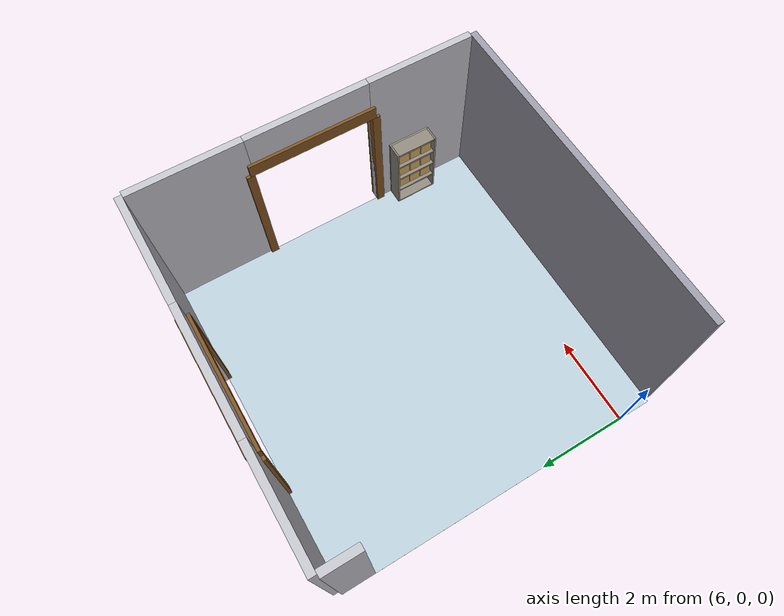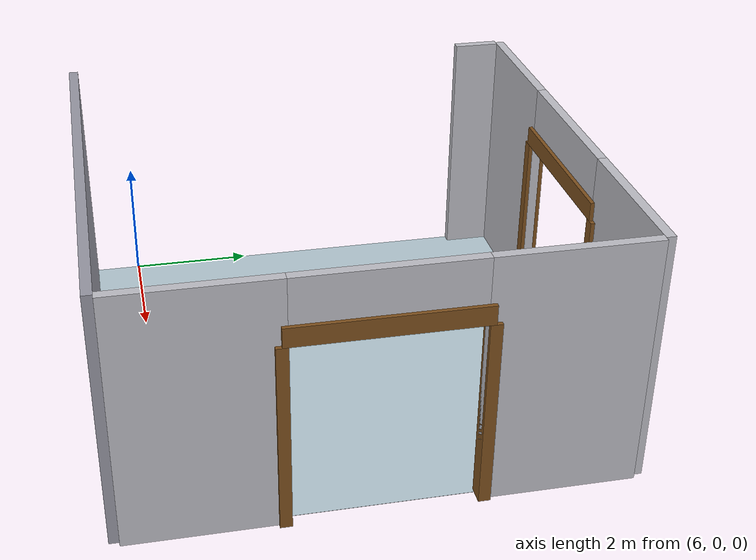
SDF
<?xml version="1.0"?>
<sdf version="1.8">
  <model name="room_c">
    <static>true</static>
    <pose>0 0 0 0 0 0</pose>
    <link name="floor_c">
      <pose>9.75 3.0 0.002 0 0 0</pose>
      <visual name="vis">
        <geometry><box><size>7.5 7.5 0.004</size></box></geometry>
        <material><ambient>0.71 0.79 0.83 1</ambient><diffuse>0.71 0.79 0.83 1</diffuse></material>
      </visual>
    </link>
    <link name="wall_c_s">
      <pose>9.825 -0.825 2.0 0 0 0</pose>
      <collision name="col"><geometry><box><size>7.499999999999999 0.15 4.0</size></box></geometry></collision>
      <visual name="vis">
        <geometry><box><size>7.499999999999999 0.15 4.0</size></box></geometry>
        <material><ambient>0.6 0.6 0.65 1</ambient><diffuse>0.6 0.6 0.65 1</diffuse></material>
      </visual>
    </link>
    <link name="wall_c_e_bot">
      <pose>13.575 0.44999999999999996 2.0 0 0 0</pose>
      <collision name="col"><geometry><box><size>0.15 2.4 4.0</size></box></geometry></collision>
      <visual name="vis">
        <geometry><box><size>0.15 2.4 4.0</size></box></geometry>
        <material><ambient>0.75 0.75 0.78 1</ambient><diffuse>0.75 0.75 0.78 1</diffuse></material>
      </visual>
    </link>
    <link name="wall_c_e_top">
      <pose>13.575 5.55 2.0 0 0 0</pose>
      <collision name="col"><geometry><box><size>0.15 2.4000000000000004 4.0</size></box></geometry></collision>
      <visual name="vis">
        <geometry><box><size>0.15 2.4000000000000004 4.0</size></box></geometry>
        <material><ambient>0.75 0.75 0.78 1</ambient><diffuse>0.75 0.75 0.78 1</diffuse></material>
      </visual>
    </link>
    <link name="wall_c_e_door_top">
      <pose>13.575 3.0 3.5 0 0 0</pose>
      <collision name="col"><geometry><box><size>0.15 2.7 1.0</size></box></geometry></collision>
      <visual name="vis">
        <geometry><box><size>0.15 2.7 1.0</size></box></geometry>
        <material><ambient>0.75 0.75 0.78 1</ambient><diffuse>0.75 0.75 0.78 1</diffuse></material>
      </visual>
    </link>
    <link name="frm_cf_l">
      <pose>13.575 1.5599999999999998 1.5 0 0 0</pose>
      <visual name="vis">
        <geometry><box><size>0.28 0.18 3.0</size></box></geometry>
        <material><ambient>0.5 0.32 0.12 1</ambient><diffuse>0.5 0.32 0.12 1</diffuse></material>
      </visual>
    </link>
    <link name="frm_cf_r">
      <pose>13.575 4.44 1.5 0 0 0</pose>
      <visual name="vis">
        <geometry><box><size>0.28 0.18 3.0</size></box></geometry>
        <material><ambient>0.5 0.32 0.12 1</ambient><diffuse>0.5 0.32 0.12 1</diffuse></material>
      </visual>
    </link>
    <link name="frm_cf_t">
      <pose>13.575 3.0 3.15 0 0 0</pose>
      <visual name="vis">
        <geometry><box><size>0.28 2.8800000000000003 0.3</size></box></geometry>
        <material><ambient>0.5 0.32 0.12 1</ambient><diffuse>0.5 0.32 0.12 1</diffuse></material>
      </visual>
    </link>
    <link name="wall_c_w_gap">
      <pose>6.075 6.375 2.0 0 0 0</pose>
      <collision name="col"><geometry><box><size>0.15 0.75 4.0</size></box></geometry></collision>
      <visual name="vis">
        <geometry><box><size>0.15 0.75 4.0</size></box></geometry>
        <material><ambient>0.75 0.75 0.78 1</ambient><diffuse>0.75 0.75 0.78 1</diffuse></material>
      </visual>
    </link>
    <link name="wall_c_n_l">
      <pose>7.2375 6.825 2.0 0 0 0</pose>
      <collision name="col"><geometry><box><size>2.325 0.15 4.0</size></box></geometry></collision>
      <visual name="vis">
        <geometry><box><size>2.325 0.15 4.0</size></box></geometry>
        <material><ambient>0.75 0.75 0.78 1</ambient><diffuse>0.75 0.75 0.78 1</diffuse></material>
      </visual>
    </link>
    <link name="wall_c_n_r">
      <pose>12.337499999999999 6.825 2.0 0 0 0</pose>
      <collision name="col"><geometry><box><size>2.4749999999999996 0.15 4.0</size></box></geometry></collision>
      <visual name="vis">
        <geometry><box><size>2.4749999999999996 0.15 4.0</size></box></geometry>
        <material><ambient>0.75 0.75 0.78 1</ambient><diffuse>0.75 0.75 0.78 1</diffuse></material>
      </visual>
    </link>
    <link name="wall_c_n_top">
      <pose>9.75 6.825 3.5 0 0 0</pose>
      <collision name="col"><geometry><box><size>2.7 0.15 1.0</size></box></geometry></collision>
      <visual name="vis">
        <geometry><box><size>2.7 0.15 1.0</size></box></geometry>
        <material><ambient>0.75 0.75 0.78 1</ambient><diffuse>0.75 0.75 0.78 1</diffuse></material>
      </visual>
    </link>
    <link name="frm_ce_l">
      <pose>8.31 6.825 1.5 0 0 0</pose>
      <visual name="vis">
        <geometry><box><size>0.18 0.28 3.0</size></box></geometry>
        <material><ambient>0.5 0.32 0.12 1</ambient><diffuse>0.5 0.32 0.12 1</diffuse></material>
      </visual>
    </link>
    <link name="frm_ce_r">
      <pose>11.19 6.825 1.5 0 0 0</pose>
      <visual name="vis">
        <geometry><box><size>0.18 0.28 3.0</size></box></geometry>
        <material><ambient>0.5 0.32 0.12 1</ambient><diffuse>0.5 0.32 0.12 1</diffuse></material>
      </visual>
    </link>
    <link name="frm_ce_t">
      <pose>9.75 6.825 3.15 0 0 0</pose>
      <visual name="vis">
        <geometry><box><size>2.8800000000000003 0.28 0.3</size></box></geometry>
        <material><ambient>0.5 0.32 0.12 1</ambient><diffuse>0.5 0.32 0.12 1</diffuse></material>
      </visual>
    </link>
    <link name="shelf_c_back">
      <pose>13.48 0.75 0.9 0 0 0</pose>
      <collision name="col"><geometry><box><size>0.04 1.0 1.8</size></box></geometry></collision>
      <visual name="vis">
        <geometry><box><size>0.04 1.0 1.8</size></box></geometry>
        <material><ambient>0.55 0.52 0.48 1</ambient><diffuse>0.55 0.52 0.48 1</diffuse></material>
      </visual>
    </link>
    <link name="shelf_c_sl">
      <pose>13.3 0.27 0.9 0 0 0</pose>
      <collision name="col"><geometry><box><size>0.36000000000000004 0.04 1.8</size></box></geometry></collision>
      <visual name="vis">
        <geometry><box><size>0.36000000000000004 0.04 1.8</size></box></geometry>
        <material><ambient>0.55 0.52 0.48 1</ambient><diffuse>0.55 0.52 0.48 1</diffuse></material>
      </visual>
    </link>
    <link name="shelf_c_sr">
      <pose>13.3 1.23 0.9 0 0 0</pose>
      <collision name="col"><geometry><box><size>0.36000000000000004 0.04 1.8</size></box></geometry></collision>
      <visual name="vis">
        <geometry><box><size>0.36000000000000004 0.04 1.8</size></box></geometry>
        <material><ambient>0.55 0.52 0.48 1</ambient><diffuse>0.55 0.52 0.48 1</diffuse></material>
      </visual>
    </link>
    <link name="shelf_c_brd0">
      <pose>13.3 0.75 0.02 0 0 0</pose>
      <collision name="col"><geometry><box><size>0.36000000000000004 0.92 0.04</size></box></geometry></collision>
      <visual name="vis">
        <geometry><box><size>0.36000000000000004 0.92 0.04</size></box></geometry>
        <material><ambient>0.55 0.52 0.48 1</ambient><diffuse>0.55 0.52 0.48 1</diffuse></material>
      </visual>
    </link>
    <link name="shelf_c_brd1">
      <pose>13.3 0.75 0.46 0 0 0</pose>
      <collision name="col"><geometry><box><size>0.36000000000000004 0.92 0.04</size></box></geometry></collision>
      <visual name="vis">
        <geometry><box><size>0.36000000000000004 0.92 0.04</size></box></geometry>
        <material><ambient>0.55 0.52 0.48 1</ambient><diffuse>0.55 0.52 0.48 1</diffuse></material>
      </visual>
    </link>
    <link name="shelf_c_brd2">
      <pose>13.3 0.75 0.9 0 0 0</pose>
      <collision name="col"><geometry><box><size>0.36000000000000004 0.92 0.04</size></box></geometry></collision>
      <visual name="vis">
        <geometry><box><size>0.36000000000000004 0.92 0.04</size></box></geometry>
        <material><ambient>0.55 0.52 0.48 1</ambient><diffuse>0.55 0.52 0.48 1</diffuse></material>
      </visual>
    </link>
    <link name="shelf_c_brd3">
      <pose>13.3 0.75 1.34 0 0 0</pose>
      <collision name="col"><geometry><box><size>0.36000000000000004 0.92 0.04</size></box></geometry></collision>
      <visual name="vis">
        <geometry><box><size>0.36000000000000004 0.92 0.04</size></box></geometry>
        <material><ambient>0.55 0.52 0.48 1</ambient><diffuse>0.55 0.52 0.48 1</diffuse></material>
      </visual>
    </link>
    <link name="shelf_c_brd4">
      <pose>13.3 0.75 1.78 0 0 0</pose>
      <collision name="col"><geometry><box><size>0.36000000000000004 0.92 0.04</size></box></geometry></collision>
      <visual name="vis">
        <geometry><box><size>0.36000000000000004 0.92 0.04</size></box></geometry>
        <material><ambient>0.55 0.52 0.48 1</ambient><diffuse>0.55 0.52 0.48 1</diffuse></material>
      </visual>
    </link>
    <link name="shelf_c_bx10">
      <pose>13.33 0.45999999999999996 0.61 0 0 0</pose>
      <collision name="col"><geometry><box><size>0.26 0.26 0.26</size></box></geometry></collision>
      <visual name="vis">
        <geometry><box><size>0.26 0.26 0.26</size></box></geometry>
        <material><ambient>0.8 0.65 0.38 1</ambient><diffuse>0.8 0.65 0.38 1</diffuse></material>
      </visual>
    </link>
    <link name="shelf_c_bx11">
      <pose>13.33 0.75 0.61 0 0 0</pose>
      <collision name="col"><geometry><box><size>0.26 0.26 0.26</size></box></geometry></collision>
      <visual name="vis">
        <geometry><box><size>0.26 0.26 0.26</size></box></geometry>
        <material><ambient>0.8 0.65 0.38 1</ambient><diffuse>0.8 0.65 0.38 1</diffuse></material>
      </visual>
    </link>
    <link name="shelf_c_bx12">
      <pose>13.33 1.04 0.61 0 0 0</pose>
      <collision name="col"><geometry><box><size>0.26 0.26 0.26</size></box></geometry></collision>
      <visual name="vis">
        <geometry><box><size>0.26 0.26 0.26</size></box></geometry>
        <material><ambient>0.8 0.65 0.38 1</ambient><diffuse>0.8 0.65 0.38 1</diffuse></material>
      </visual>
    </link>
    <link name="shelf_c_bx20">
      <pose>13.33 0.45999999999999996 1.05 0 0 0</pose>
      <collision name="col"><geometry><box><size>0.26 0.26 0.26</size></box></geometry></collision>
      <visual name="vis">
        <geometry><box><size>0.26 0.26 0.26</size></box></geometry>
        <material><ambient>0.8 0.65 0.38 1</ambient><diffuse>0.8 0.65 0.38 1</diffuse></material>
      </visual>
    </link>
    <link name="shelf_c_bx21">
      <pose>13.33 0.75 1.05 0 0 0</pose>
      <collision name="col"><geometry><box><size>0.26 0.26 0.26</size></box></geometry></collision>
      <visual name="vis">
        <geometry><box><size>0.26 0.26 0.26</size></box></geometry>
        <material><ambient>0.8 0.65 0.38 1</ambient><diffuse>0.8 0.65 0.38 1</diffuse></material>
      </visual>
    </link>
    <link name="shelf_c_bx22">
      <pose>13.33 1.04 1.05 0 0 0</pose>
      <collision name="col"><geometry><box><size>0.26 0.26 0.26</size></box></geometry></collision>
      <visual name="vis">
        <geometry><box><size>0.26 0.26 0.26</size></box></geometry>
        <material><ambient>0.8 0.65 0.38 1</ambient><diffuse>0.8 0.65 0.38 1</diffuse></material>
      </visual>
    </link>
    <link name="shelf_c_bx30">
      <pose>13.33 0.45999999999999996 1.4900000000000002 0 0 0</pose>
      <collision name="col"><geometry><box><size>0.26 0.26 0.26</size></box></geometry></collision>
      <visual name="vis">
        <geometry><box><size>0.26 0.26 0.26</size></box></geometry>
        <material><ambient>0.8 0.65 0.38 1</ambient><diffuse>0.8 0.65 0.38 1</diffuse></material>
      </visual>
    </link>
    <link name="shelf_c_bx31">
      <pose>13.33 0.75 1.4900000000000002 0 0 0</pose>
      <collision name="col"><geometry><box><size>0.26 0.26 0.26</size></box></geometry></collision>
      <visual name="vis">
        <geometry><box><size>0.26 0.26 0.26</size></box></geometry>
        <material><ambient>0.8 0.65 0.38 1</ambient><diffuse>0.8 0.65 0.38 1</diffuse></material>
      </visual>
    </link>
    <link name="shelf_c_bx32">
      <pose>13.33 1.04 1.4900000000000002 0 0 0</pose>
      <collision name="col"><geometry><box><size>0.26 0.26 0.26</size></box></geometry></collision>
      <visual name="vis">
        <geometry><box><size>0.26 0.26 0.26</size></box></geometry>
        <material><ambient>0.8 0.65 0.38 1</ambient><diffuse>0.8 0.65 0.38 1</diffuse></material>
      </visual>
    </link>
  </model>
</sdf>
